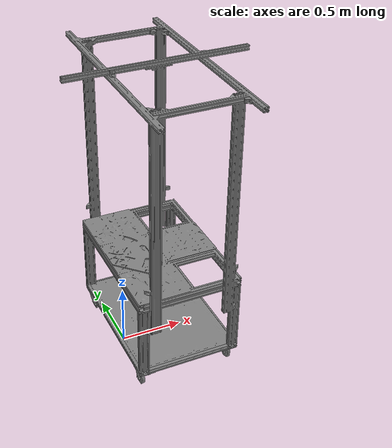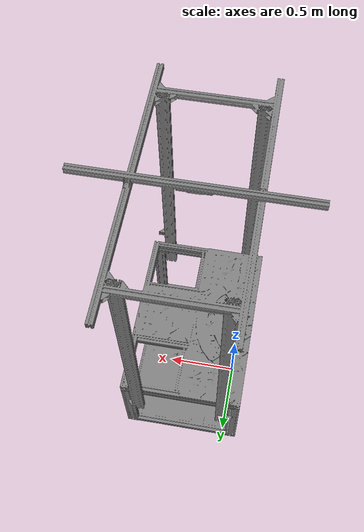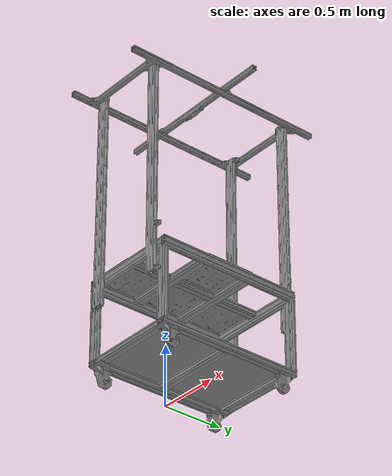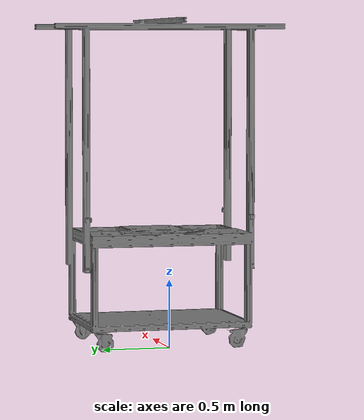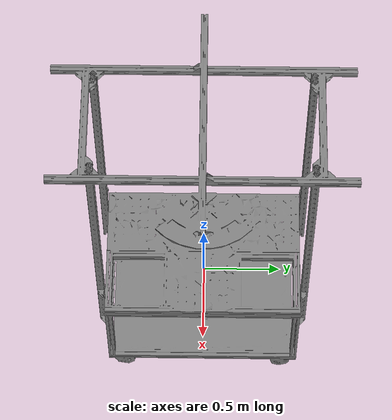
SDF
<?xml version="1.0" ?>
<sdf version="1.6">
  <model name="stand">
    <static>true</static>
    <link name="link">
      <collision name="collision">
        <geometry>
          <mesh>
            <scale>0.001 0.001 0.001</scale>
            <uri>model://stand/meshes/stand.dae</uri>
          </mesh>
        </geometry>
        <pose>0 0 0.84 0 0 -1.57</pose> <!-- x, y, z, roll, pitch, yaw -->
      </collision>
      <visual name="visual">
        <geometry>-0.144271
          <mesh>
            <scale>0.001 0.001 0.001</scale>
            <uri>model://stand/meshes/stand.dae</uri>
          </mesh>
        </geometry>
        <pose>0 0 0.84 0 0 -1.57</pose> <!-- x, y, z, roll, pitch, yaw -->

        <material>
          <ambient>0.5 0.5 0.5 1</ambient>
          <diffuse>0.5 0.5 0.5 1</diffuse>
          <specular>0.1 0.1 0.1 1</specular>
          <emissive>0 0 0 1</emissive>
        </material>

      </visual>
    </link>
  </model>
</sdf>
